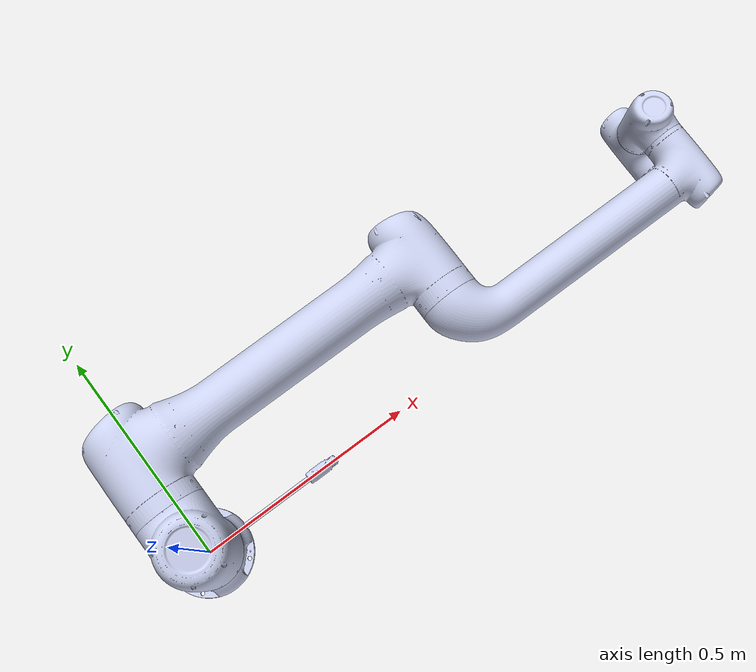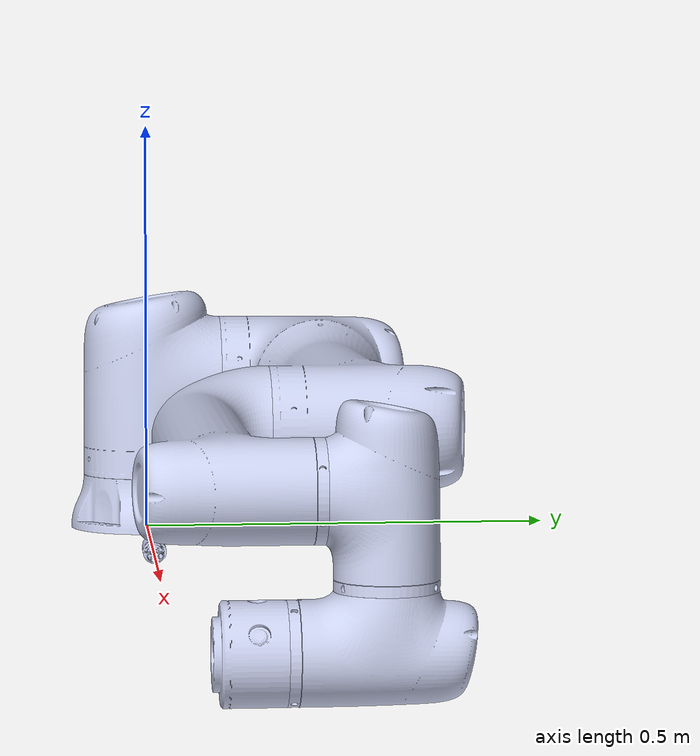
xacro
<?xml version="1.0"?>
<robot xmlns:xacro="http://www.ros.org/wiki/xacro" name="jaka_zu15">
    <xacro:arg name="initial_positions_file" default="initial_positions.yaml" />
    <xacro:arg name="use_gazebo" default="false"/>
    <xacro:arg name="use_rviz_sim" default="false"/>

    <!-- Import jaka_zu15 urdf file -->
    <xacro:include filename="$(find jaka_description)/urdf/jaka_zu15.urdf" />

    <!-- Import control_xacro -->
    <xacro:include filename="jaka_zu15.ros2_control.xacro" />

    <xacro:jaka_zu15_ros2_control name="jaka_zu15_hardware" initial_positions_file="$(arg initial_positions_file)" use_gazebo="$(arg use_gazebo)" use_rviz_sim="$(arg use_rviz_sim)"/>

</robot>

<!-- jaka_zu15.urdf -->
<robot
  name="jaka_zu15">
  <!-- LINK -->
  <link name="world" />
  <link
    name="base_link">
    <inertial>
      <origin
        xyz="0.014771 -0.000602 0.029843"
        rpy="0 0 0" />
      <mass
        value="1.366" />
      <inertia
        ixx="5.1387"
        ixy="0.00072433"
        ixz="0.15847"
        iyy="9.4601"
        iyz="-0.048546"
        izz="11.183" />
    </inertial>
    <visual>
      <origin
        xyz="0 0 0"
        rpy="0 0 0" />
      <geometry>
        <mesh
          filename="package://jaka_description/meshes/jaka_zu15_meshes/base_link.STL" />
      </geometry>
      <material
        name="">
        <color
          rgba="0.79216 0.81961 0.93333 1" />
      </material>
    </visual>
    <collision>
      <origin
        xyz="0 0 0"
        rpy="0 0 0" />
      <geometry>
        <mesh
          filename="package://jaka_description/meshes/jaka_zu15_meshes/base_link.STL" />
      </geometry>
    </collision>
  </link>
  <!-- JOINT -->
  <joint name="fixed" type="fixed">
    <origin xyz="0 0 0" rpy="0 0 0" />
     <parent link="world"/>
     <child link="base_link"/>
  </joint>
  <link
    name="Link_01">
    <inertial>
      <origin
        xyz="1.2E-05 0.004888 -0.033185"
        rpy="0 0 0" />
      <mass
        value="9.321" />
      <inertia
        ixx="48.471"
        ixy="-0.01274"
        ixz="0.045021"
        iyy="47.812"
        iyz="0.53242"
        izz="29.322" />
    </inertial>
    <visual>
      <origin
        xyz="0 0 0"
        rpy="0 0 0" />
      <geometry>
        <mesh
          filename="package://jaka_description/meshes/jaka_zu15_meshes/Link_01.STL" />
      </geometry>
      <material
        name="">
        <color
          rgba="0.79216 0.81961 0.93333 1" />
      </material>
    </visual>
    <collision>
      <origin
        xyz="0 0 0"
        rpy="0 0 0" />
      <geometry>
        <mesh
          filename="package://jaka_description/meshes/jaka_zu15_meshes/Link_01.STL" />
      </geometry>
    </collision>
  </link>
  <joint
    name="joint_1"
    type="revolute">
    <origin
      xyz="0 0 0.184"
      rpy="0 0 0" />
    <parent
      link="base_link" />
    <child
      link="Link_01" />
    <axis
      xyz="0 0 1" />
    <limit
      lower="-6.28"
      upper="6.28"
      effort="411"
      velocity="3.31" />
  </joint>
  <link
    name="Link_02">
    <inertial>
      <origin
        xyz="0.25641 -1.5E-05 -0.18144"
        rpy="0 0 0" />
      <mass
        value="17.227" />
      <inertia
        ixx="635.84"
        ixy="-0.12418"
        ixz="-822.93"
        iyy="3379.7"
        iyz="0.019691"
        izz="2797.2" />
    </inertial>
    <visual>
      <origin
        xyz="0 0 0"
        rpy="0 0 0" />
      <geometry>
        <mesh
          filename="package://jaka_description/meshes/jaka_zu15_meshes/Link_02.STL" />
      </geometry>
      <material
        name="">
        <color
          rgba="0.79216 0.81961 0.93333 1" />
      </material>
    </visual>
    <collision>
      <origin
        xyz="0 0 0"
        rpy="0 0 0" />
      <geometry>
        <mesh
          filename="package://jaka_description/meshes/jaka_zu15_meshes/Link_02.STL" />
      </geometry>
    </collision>
  </link>
  <joint
    name="joint_2"
    type="revolute">
    <origin
      xyz="0 0 0"
      rpy="1.5708 0 0" />
    <parent
      link="Link_01" />
    <child
      link="Link_02" />
    <axis
      xyz="0 0 1" />
    <limit
      lower="-1.48"
      upper="4.62"
      effort="411"
      velocity="3.31" />
  </joint>
  <link
    name="Link_03">
    <inertial>
      <origin
        xyz="0.35975 6.1E-05 -0.045566"
        rpy="0 0 0" />
      <mass
        value="5.12" />
      <inertia
        ixx="20.798"
        ixy="-0.0078393"
        ixz="-87.972"
        iyy="940.93"
        iyz="-0.031499"
        izz="928.07" />
    </inertial>
    <visual>
      <origin
        xyz="0 0 0"
        rpy="0 0 0" />
      <geometry>
        <mesh
          filename="package://jaka_description/meshes/jaka_zu15_meshes/Link_03.STL" />
      </geometry>
      <material
        name="">
        <color
          rgba="0.79216 0.81961 0.93333 1" />
      </material>
    </visual>
    <collision>
      <origin
        xyz="0 0 0"
        rpy="0 0 0" />
      <geometry>
        <mesh
          filename="package://jaka_description/meshes/jaka_zu15_meshes/Link_03.STL" />
      </geometry>
    </collision>
  </link>
  <joint
    name="joint_3"
    type="revolute">
    <origin
      xyz="0.7 0 0"
      rpy="0 0 0" />
    <parent
      link="Link_02" />
    <child
      link="Link_03" />
    <axis
      xyz="0 0 1" />
    <limit
      lower="-2.93"
      upper="2.93"
      effort="194"
      velocity="3.66" />
  </joint>
  <link
    name="Link_04">
    <inertial>
      <origin
        xyz="1.2E-05 0.028535 0.004248"
        rpy="0 0 0" />
      <mass
        value="2.371" />
      <inertia
        ixx="6.1112"
        ixy="0.0023171"
        ixz="0.00088886"
        iyy="2.5056"
        iyz="0.0080603"
        izz="5.982" />
    </inertial>
    <visual>
      <origin
        xyz="0 0 0"
        rpy="0 0 0" />
      <geometry>
        <mesh
          filename="package://jaka_description/meshes/jaka_zu15_meshes/Link_04.STL" />
      </geometry>
      <material
        name="">
        <color
          rgba="0.79216 0.81961 0.93333 1" />
      </material>
    </visual>
    <collision>
      <origin
        xyz="0 0 0"
        rpy="0 0 0" />
      <geometry>
        <mesh
          filename="package://jaka_description/meshes/jaka_zu15_meshes/Link_04.STL" />
      </geometry>
    </collision>
  </link>
  <joint
    name="joint_4"
    type="revolute">
    <origin
      xyz="0.5635 0 -0.1635"
      rpy="0 0 0" />
    <parent
      link="Link_03" />
    <child
      link="Link_04" />
    <axis
      xyz="0 0 1" />
    <limit
      lower="-6.28"
      upper="6.28"
      effort="53"
      velocity="3.66" />
  </joint>
  <link
    name="Link_05">
    <inertial>
      <origin
        xyz="1.1E-05 0.026844 -0.004152"
        rpy="0 0 0" />
      <mass
        value="2.416" />
      <inertia
        ixx="6.3035"
        ixy="-0.0023526"
        ixz="-0.00089034"
        iyy="2.5358"
        iyz="0.0082096"
        izz="6.1748" />
    </inertial>
    <visual>
      <origin
        xyz="0 0 0"
        rpy="0 0 0" />
      <geometry>
        <mesh
          filename="package://jaka_description/meshes/jaka_zu15_meshes/Link_05.STL" />
      </geometry>
      <material
        name="">
        <color
          rgba="0.79216 0.81961 0.93333 1" />
      </material>
    </visual>
    <collision>
      <origin
        xyz="0 0 0"
        rpy="0 0 0" />
      <geometry>
        <mesh
          filename="package://jaka_description/meshes/jaka_zu15_meshes/Link_05.STL" />
      </geometry>
    </collision>
  </link>
  <joint
    name="joint_5"
    type="revolute">
    <origin
      xyz="0 -0.1365 0"
      rpy="1.5708 0 0" />
    <parent
      link="Link_04" />
    <child
      link="Link_05" />
    <axis
      xyz="0 0 1" />
    <limit
      lower="-6.28"
      upper="6.28"
      effort="53"
      velocity="3.66" />
  </joint>
  <link
    name="Link_06">
    <inertial>
      <origin
        xyz="-0.000294 -0.000287 -0.03157"
        rpy="0 0 0" />
      <mass
        value="0.706" />
      <inertia
        ixx="1.6842"
        ixy="0.0049316"
        ixz="0.0073828"
        iyy="1.6972"
        iyz="0.0083448"
        izz="1.276" />
    </inertial>
    <visual>
      <origin
        xyz="0 0 0"
        rpy="0 0 0" />
      <geometry>
        <mesh
          filename="package://jaka_description/meshes/jaka_zu15_meshes/Link_06.STL" />
      </geometry>
      <material
        name="">
        <color
          rgba="0.79216 0.81961 0.93333 1" />
      </material>
    </visual>
    <collision>
      <origin
        xyz="0 0 0"
        rpy="0 0 0" />
      <geometry>
        <mesh
          filename="package://jaka_description/meshes/jaka_zu15_meshes/Link_06.STL" />
      </geometry>
    </collision>
  </link>
  <joint
    name="joint_6"
    type="revolute">
    <origin
      xyz="0 0.1465 0"
      rpy="-1.5708 0 0" />
    <parent
      link="Link_05" />
    <child
      link="Link_06" />
    <axis
      xyz="0 0 1" />
    <limit
      lower="-6.28"
      upper="6.28"
      effort="53"
      velocity="3.66" />
  </joint>

  <transmission name="trans_joint_1">
        <type>transmission_interface/SimpleTransmission</type>
        <joint name="joint_1">
            <hardwareInterface>hardware_interface/Positionjoint_ointInterface</hardwareInterface>
        </joint>
        <actuator name="joint_1_motor">
            <hardwareInterface>hardware_interface/PositionJointInterface</hardwareInterface>
            <mechanicalReduction>1</mechanicalReduction>
        </actuator>
    </transmission>
    <transmission name="trans_joint_2">
        <type>transmission_interface/SimpleTransmission</type>
        <joint name="joint_2">
            <hardwareInterface>hardware_interface/PositionJointInterface</hardwareInterface>
        </joint>
        <actuator name="joint_2_motor">
            <hardwareInterface>hardware_interface/PositionJointInterface</hardwareInterface>
            <mechanicalReduction>1</mechanicalReduction>
        </actuator>
    </transmission>
    <transmission name="trans_joint_3">
        <type>transmission_interface/SimpleTransmission</type>
        <joint name="joint_3">
            <hardwareInterface>hardware_interface/PositionJointInterface</hardwareInterface>
        </joint>
        <actuator name="joint_3_motor">
            <hardwareInterface>hardware_interface/PositionJointInterface</hardwareInterface>
            <mechanicalReduction>1</mechanicalReduction>
        </actuator>
    </transmission>
    <transmission name="trans_joint_4">
        <type>transmission_interface/SimpleTransmission</type>
        <joint name="joint_4">
            <hardwareInterface>hardware_interface/PositionJointInterface</hardwareInterface>
        </joint>
        <actuator name="joint_4_motor">
            <hardwareInterface>hardware_interface/PositionJointInterface</hardwareInterface>
            <mechanicalReduction>1</mechanicalReduction>
        </actuator>
    </transmission>
    <transmission name="trans_joint_5">
        <type>transmission_interface/SimpleTransmission</type>
        <joint name="joint_5">
            <hardwareInterface>hardware_interface/PositionJointInterface</hardwareInterface>
        </joint>
        <actuator name="joint_5_motor">
            <hardwareInterface>hardware_interface/PositionJointInterface</hardwareInterface>
            <mechanicalReduction>1</mechanicalReduction>
        </actuator>
    </transmission>
    <transmission name="trans_joint_6">
        <type>transmission_interface/SimpleTransmission</type>
        <joint name="joint_6">
            <hardwareInterface>hardware_interface/PositionJointInterface</hardwareInterface>
        </joint>
        <actuator name="joint_6_motor">
            <hardwareInterface>hardware_interface/PositionJointInterface</hardwareInterface>
            <mechanicalReduction>1</mechanicalReduction>
        </actuator>
    </transmission>

    <gazebo>
        <plugin name="ign_ros2_control::IgnitionROS2ControlPlugin" filename="libign_ros2_control-system.so">
          <parameters>$(find jaka_zu15_moveit_config)/config/ros2_controllers.yaml</parameters>
          <robotNamespace>/</robotNamespace>
        </plugin>
    </gazebo>
</robot>
